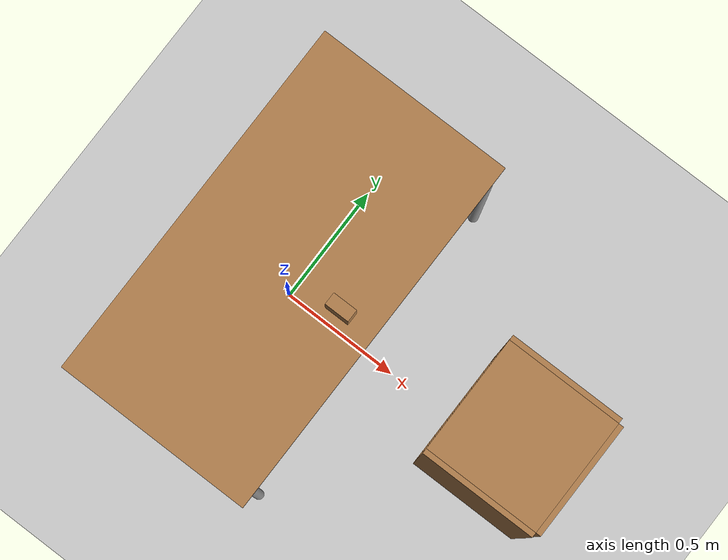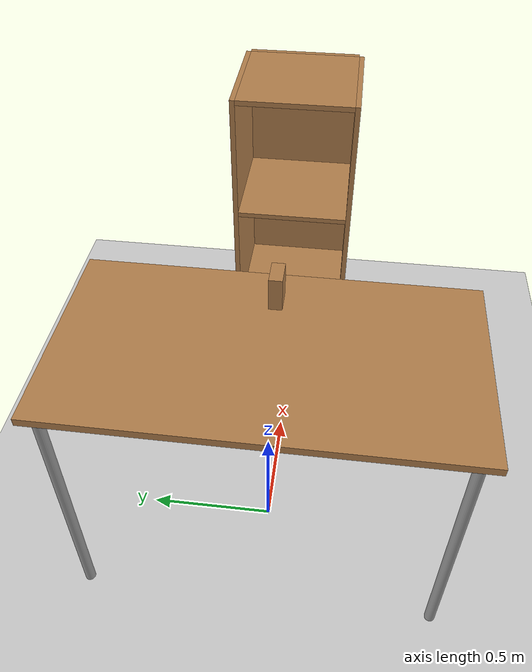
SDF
<sdf version="1.5">
 <world name="default">
  <include><uri>model://sun</uri></include>
  <include><uri>model://ground_plane</uri></include>
  <include>
   <uri>model://table</uri>
   <name>Base_Table</name>
   <pose>0 0 0 0 0 1.57</pose>
   <static>true</static>
  </include>
  <include>
   <uri>model://wood_cube_10cm</uri>
   <name>Cube</name>
   <pose>0.25 0 1 0 0 0</pose>
   <static>true</static>
  </include>
  <include>
   <uri>model://cabinet</uri>
   <name>Cabinet</name>
   <pose>1 0 0.5 0 0 0</pose>
   <static>true</static>
  </include>
 </world>
</sdf>

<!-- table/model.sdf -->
<sdf version="1.5">
  <model name="table">
    <static>true</static>
    <link name="link">
      <collision name="surface">
        <pose>0 0 1.0 0 0 0</pose>
        <geometry>
          <box>
            <size>1.5 0.8 0.03</size>
          </box>
        </geometry>
        <surface>
          <friction>
            <ode>
              <mu>0.6</mu>
              <mu2>0.6</mu2>
            </ode>
          </friction>
        </surface>
      </collision>
      <visual name="visual1">
        <pose>0 0 1.0 0 0 0</pose>
        <geometry>
          <box>
            <size>1.5 0.8 0.03</size>
          </box>
        </geometry>
        <material>
          <script>
            <uri>model://media/materials/scripts/gazebo.material</uri>
            <name>Gazebo/Wood</name>
          </script>
        </material>
      </visual>
      <collision name="front_left_leg">
        <pose>0.68 0.38 0.5 0 0 0</pose>
        <geometry>
          <cylinder>
            <radius>0.02</radius>
            <length>1.0</length>
          </cylinder>
        </geometry>
      </collision>
      <visual name="front_left_leg">
        <pose>0.68 0.38 0.5 0 0 0</pose>
        <geometry>
          <cylinder>
            <radius>0.02</radius>
            <length>1.0</length>
          </cylinder>
        </geometry>
        <material>
          <script>
            <uri>model://media/materials/scripts/gazebo.material</uri>
            <name>Gazebo/Grey</name>
          </script>
        </material>
      </visual>
      <collision name="front_right_leg">
        <pose>0.68 -0.38 0.5 0 0 0</pose>
        <geometry>
          <cylinder>
            <radius>0.02</radius>
            <length>1.0</length>
          </cylinder>
        </geometry>
      </collision>
      <visual name="front_right_leg">
        <pose>0.68 -0.38 0.5 0 0 0</pose>
        <geometry>
          <cylinder>
            <radius>0.02</radius>
            <length>1.0</length>
          </cylinder>
        </geometry>
        <material>
          <script>
            <uri>model://media/materials/scripts/gazebo.material</uri>
            <name>Gazebo/Grey</name>
          </script>
        </material>
      </visual>
      <collision name="back_right_leg">
        <pose>-0.68 -0.38 0.5 0 0 0</pose>
        <geometry>
          <cylinder>
            <radius>0.02</radius>
            <length>1.0</length>
          </cylinder>
        </geometry>
      </collision>
      <visual name="back_right_leg">
        <pose>-0.68 -0.38 0.5 0 0 0</pose>
        <geometry>
          <cylinder>
            <radius>0.02</radius>
            <length>1.0</length>
          </cylinder>
        </geometry>
        <material>
          <script>
            <uri>model://media/materials/scripts/gazebo.material</uri>
            <name>Gazebo/Grey</name>
          </script>
        </material>
      </visual>
      <collision name="back_left_leg">
        <pose>-0.68 0.38 0.5 0 0 0</pose>
        <geometry>
          <cylinder>
            <radius>0.02</radius>
            <length>1.0</length>
          </cylinder>
        </geometry>
      </collision>
      <visual name="back_left_leg">
        <pose>-0.68 0.38 0.5 0 0 0</pose>
        <geometry>
          <cylinder>
            <radius>0.02</radius>
            <length>1.0</length>
          </cylinder>
        </geometry>
        <material>
          <script>
            <uri>model://media/materials/scripts/gazebo.material</uri>
            <name>Gazebo/Grey</name>
          </script>
        </material>
      </visual>
    </link>
  </model>
</sdf>

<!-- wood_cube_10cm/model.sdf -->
<sdf version="1.5">
  <model name="wood_cube_10cm">
    <link name="link">
      <pose>0 0 0.05 0 0 0</pose>
      <inertial>
        <mass>0.5167</mass>
        <inertia>
          <ixx>0.0008611666666666669</ixx>
          <ixy>0</ixy>
          <ixz>0</ixz>
          <iyy>0.0008611666666666669</iyy>
          <iyz>0</iyz>
          <izz>0.0008611666666666669</izz>
        </inertia>
      </inertial>

      <collision name="collision">
        <geometry>
          <box>
            <size>0.1 0.05 0.2</size>
          </box>
        </geometry>
        <surface>
          <contact>
            <!-- Red Pine coefficients for longitudinal axis of the wood
                 according to:
                 http://www.fpl.fs.fed.us/documnts/fplgtr/fplgtr113/ch04.pdf -->
            <poissons_ratio>0.347</poissons_ratio>
            <elastic_modulus>8.8e+09</elastic_modulus>
            <ode>
              <kp>100000</kp>
              <kd>100</kd>
              <max_vel>100.0</max_vel>
              <min_depth>0.001</min_depth>
            </ode>
          </contact>
          <friction>
            <torsional>
              <coefficient>1.0</coefficient>
              <use_patch_radius>0</use_patch_radius>
              <surface_radius>0.01</surface_radius>
            </torsional>
          </friction>
        </surface>
      </collision>

      <visual name="visual">
        <geometry>
          <box>
            <size>0.1 0.05 0.2</size>
          </box>
        </geometry>
        <material>
          <script>
            <uri>file://media/materials/scripts/gazebo.material</uri>
            <name>Gazebo/Wood</name>
          </script>
        </material>
      </visual>

    </link>
  </model>
</sdf>

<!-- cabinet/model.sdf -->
<sdf version="1.5">
  <model name="cabinet">
    <static>true</static>
    <link name="cabinet_bottom_plate">
      <inertial>
        <pose>0 0 -1 0 0 0</pose>
        <inertia>
          <ixx>2.050000</ixx>
          <ixy>0</ixy>
          <ixz>0</ixz>
          <iyy>2.050000</iyy>
          <iyz>0</iyz>
          <izz>2.050000</izz>
        </inertia>
        <mass>25.000000</mass>
      </inertial>
      <collision name="cabinet_bottom_plate_geom">
        <pose>0 0 0.010000 0 0 0</pose>
        <geometry>
          <box>
            <size>0.450000 0.450000 0.020000</size>
          </box>
        </geometry>
      </collision>
      <visual name="cabinet_bottom_plate_geom_visual">
        <pose>0 0 0.010000 0 0 0</pose>
        <geometry>
          <box>
            <size>0.450000 0.450000 0.020000</size>
          </box>
        </geometry>
        <material>
          <script>
            <uri>model://media/materials/scripts/gazebo.material</uri>
            <name>Gazebo/Wood</name>
          </script>
        </material>
      </visual>
      <collision name="cabinet_bottom_plate_geom_cabinet_back_plate">
        <pose>0.235000 0 0.510000 0 0 0</pose>
        <geometry>
          <box>
            <size>0.020000 0.450000 1.020000</size>
          </box>
        </geometry>
      </collision>
      <visual name="cabinet_bottom_plate_geom_cabinet_back_plate_visual">
        <pose>0.235000 0 0.510000 0 0 0</pose>
        <geometry>
          <box>
            <size>0.020000 0.450000 1.020000</size>
          </box>
        </geometry>
        <material>
          <script>
            <uri>model://media/materials/scripts/gazebo.material</uri>
            <name>Gazebo/Wood</name>
          </script>
        </material>
      </visual>
      <collision name="cabinet_bottom_plate_geom_cabinet_left_plate">
        <pose>0 0.235000 0.510000 0 0 0</pose>
        <geometry>
          <box>
            <size>0.450000 0.020000 1.020000</size>
          </box>
        </geometry>
      </collision>
      <visual name="cabinet_bottom_plate_geom_cabinet_left_plate_visual">
        <pose>0 0.235000 0.510000 0 0 0</pose>
        <geometry>
          <box>
            <size>0.450000 0.020000 1.020000</size>
          </box>
        </geometry>
        <material>
          <script>
            <uri>model://media/materials/scripts/gazebo.material</uri>
            <name>Gazebo/Wood</name>
          </script>
        </material>
      </visual>
      <collision name="cabinet_bottom_plate_geom_cabinet_middle_plate">
        <pose>0 0 0.510000 0 0 0</pose>
        <geometry>
          <box>
            <size>0.450000 0.450000 0.020000</size>
          </box>
        </geometry>
      </collision>
      <visual name="cabinet_bottom_plate_geom_cabinet_middle_plate_visual">
        <pose>0 0 0.510000 0 0 0</pose>
        <geometry>
          <box>
            <size>0.450000 0.450000 0.020000</size>
          </box>
        </geometry>
        <material>
          <script>
            <uri>model://media/materials/scripts/gazebo.material</uri>
            <name>Gazebo/Wood</name>
          </script>
        </material>
      </visual>
      <collision name="cabinet_bottom_plate_geom_cabinet_right_plate">
        <pose>0 -0.235000 0.510000 0 0 0</pose>
        <geometry>
          <box>
            <size>0.450000 0.020000 1.020000</size>
          </box>
        </geometry>
      </collision>
      <visual name="cabinet_bottom_plate_geom_cabinet_right_plate_visual">
        <pose>0 -0.235000 0.510000 0 0 0</pose>
        <geometry>
          <box>
            <size>0.450000 0.020000 1.020000</size>
          </box>
        </geometry>
        <material>
          <script>
            <uri>model://media/materials/scripts/gazebo.material</uri>
            <name>Gazebo/Wood</name>
          </script>
        </material>
      </visual>
      <collision name="cabinet_bottom_plate_geom_cabinet_top_plate">
        <pose>0 0 1.010000 0 0 0</pose>
        <geometry>
          <box>
            <size>0.450000 0.450000 0.020000</size>
          </box>
        </geometry>
      </collision>
      <visual name="cabinet_bottom_plate_geom_cabinet_top_plate_visual">
        <pose>0 0 1.010000 0 0 0</pose>
        <geometry>
          <box>
            <size>0.450000 0.450000 0.020000</size>
          </box>
        </geometry>
        <material>
          <script>
            <uri>model://media/materials/scripts/gazebo.material</uri>
            <name>Gazebo/Wood</name>
          </script>
        </material>
      </visual>
    </link>
  </model>
</sdf>
